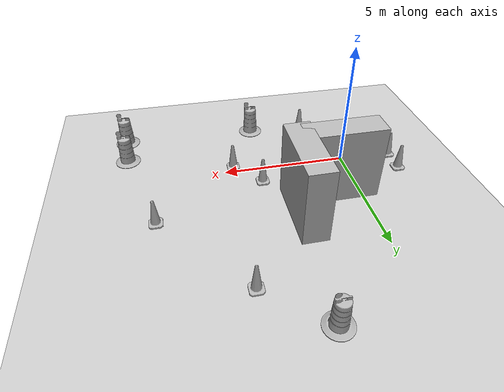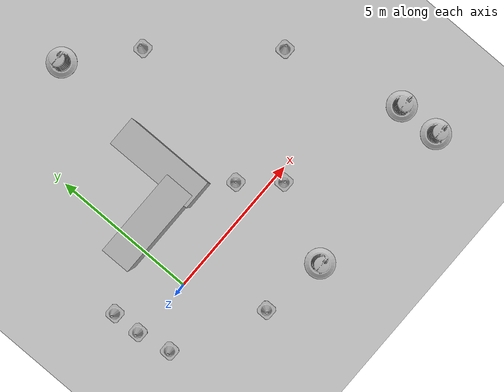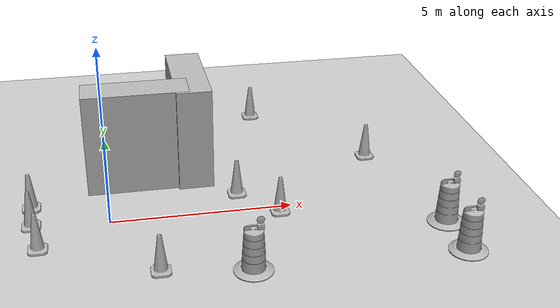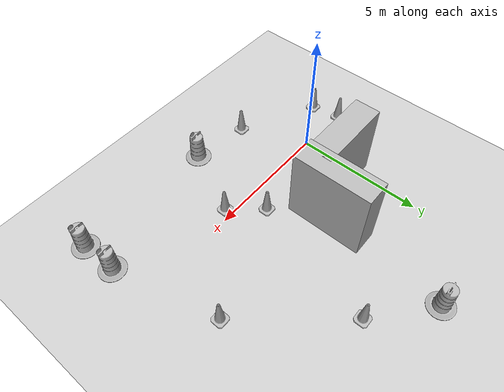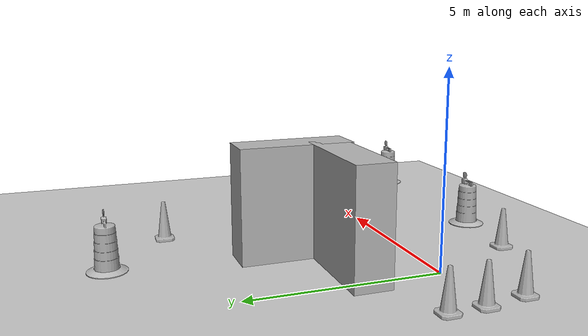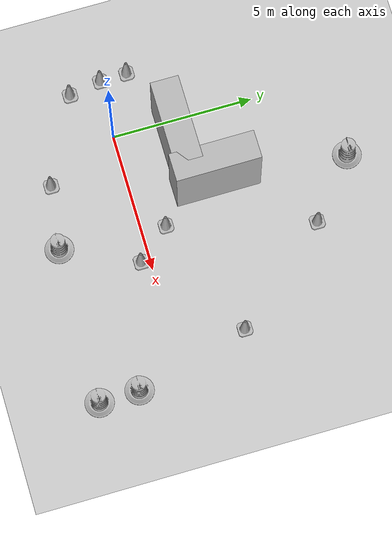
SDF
<sdf version="1.7">
 <world name="default">
  <light name="sun" type="directional">
   <pose>0 0 10 0 -0 0</pose>
   <diffuse>0.8 0.8 0.8 1</diffuse>
   <specular>0.2 0.2 0.2 1</specular>
   <attenuation>
    <range>1000</range>
    <constant>0.9</constant>
    <linear>0.01</linear>
    <quadratic>0.001</quadratic>
   </attenuation>
   <direction>-0.5 0.1 -0.9</direction>
   <spot><inner_angle>0</inner_angle><outer_angle>0</outer_angle><falloff>0</falloff></spot>
  </light>
  <model name="ground_plane">
   <static>1</static>
   <link name="link">
    <collision name="collision">
     <geometry><plane><normal>0 0 1</normal><size>100 100</size></plane></geometry>
     <surface>
      <contact><collide_bitmask>65535</collide_bitmask></contact>
      <friction><ode><mu>100</mu><mu2>50</mu2></ode></friction>
     </surface>
    </collision>
    <visual name="visual">
     <cast_shadows>0</cast_shadows>
     <geometry><plane><normal>0 0 1</normal><size>100 100</size></plane></geometry>
     <material>
      <script><uri>file://media/materials/scripts/gazebo.material</uri><name>Gazebo/Grey</name></script>
     </material>
    </visual>
   </link>
  </model>
  <gravity>0 0 -9.8</gravity>
  <magnetic_field>6e-06 2.3e-05 -4.2e-05</magnetic_field>
  <atmosphere type="adiabatic"/>
  <physics type="ode">
   <max_step_size>0.001</max_step_size>
   <real_time_factor>1</real_time_factor>
   <real_time_update_rate>1000</real_time_update_rate>
  </physics>
  <scene><ambient>0.4 0.4 0.4 1</ambient><background>0.7 0.7 0.7 1</background><shadows>1</shadows></scene>
  <spherical_coordinates>
   <surface_model>EARTH_WGS84</surface_model>
   <latitude_deg>0</latitude_deg>
   <longitude_deg>0</longitude_deg>
   <elevation>0</elevation>
   <heading_deg>0</heading_deg>
  </spherical_coordinates>
  <model name="Construction Cone">
   <link name="link">
    <collision name="collision">
     <geometry>
      <mesh><scale>10 10 10</scale><uri>model://construction_cone/meshes/construction_cone.dae</uri></mesh>
     </geometry>
    </collision>
    <visual name="visual">
     <geometry>
      <mesh><scale>10 10 10</scale><uri>model://construction_cone/meshes/construction_cone.dae</uri></mesh>
     </geometry>
    </visual>
    <inertial>
     <inertia><ixx>1</ixx><ixy>0</ixy><ixz>0</ixz><iyy>1</iyy><iyz>0</iyz><izz>1</izz></inertia>
     <mass>1</mass>
    </inertial>
   </link>
   <pose>-2.09858 0.117097 -0 0 -0 0</pose>
  </model>
  <model name="Construction Cone_0">
   <link name="link">
    <collision name="collision">
     <geometry>
      <mesh><scale>10 10 10</scale><uri>model://construction_cone/meshes/construction_cone.dae</uri></mesh>
     </geometry>
    </collision>
    <visual name="visual">
     <geometry>
      <mesh><scale>10 10 10</scale><uri>model://construction_cone/meshes/construction_cone.dae</uri></mesh>
     </geometry>
    </visual>
    <inertial>
     <inertia><ixx>1</ixx><ixy>0</ixy><ixz>0</ixz><iyy>1</iyy><iyz>0</iyz><izz>1</izz></inertia>
     <mass>1</mass>
    </inertial>
   </link>
   <pose>-2.1224 1.0783 -0 0 -1e-06 0</pose>
  </model>
  <model name="Construction Cone_1">
   <link name="link">
    <collision name="collision">
     <geometry>
      <mesh><scale>10 10 10</scale><uri>model://construction_cone/meshes/construction_cone.dae</uri></mesh>
     </geometry>
    </collision>
    <visual name="visual">
     <geometry>
      <mesh><scale>10 10 10</scale><uri>model://construction_cone/meshes/construction_cone.dae</uri></mesh>
     </geometry>
    </visual>
    <inertial>
     <inertia><ixx>1</ixx><ixy>0</ixy><ixz>0</ixz><iyy>1</iyy><iyz>0</iyz><izz>1</izz></inertia>
     <mass>1</mass>
    </inertial>
   </link>
   <pose>-1.89276 -1.04271 -0 0 -0 0</pose>
  </model>
  <model name="brick_box_3x1x3">
   <static>1</static>
   <link name="chassis">
    <pose>0 0 1.5 0 -0 0</pose>
    <collision name="collision"><geometry><box><size>3 1 3</size></box></geometry></collision>
    <visual name="visual">
     <geometry><mesh><uri>model://brick_box_3x1x3/meshes/simple_box.dae</uri><scale>3 1 3</scale></mesh></geometry>
     <material>
      <script>
       <uri>model://brick_box_3x1x3/materials/scripts</uri>
       <uri>model://brick_box_3x1x3/materials/textures</uri>
       <name>BrickBox/Diffuse</name>
      </script>
     </material>
    </visual>
   </link>
   <pose>0.944072 2.04378 0 0 -0 0</pose>
  </model>
  <model name="brick_box_3x1x3_0">
   <static>1</static>
   <link name="chassis">
    <pose>0 0 1.5 0 -0 0</pose>
    <collision name="collision"><geometry><box><size>3 1 3</size></box></geometry></collision>
    <visual name="visual">
     <geometry><mesh><uri>model://brick_box_3x1x3/meshes/simple_box.dae</uri><scale>3 1 3</scale></mesh></geometry>
     <material>
      <script>
       <uri>model://brick_box_3x1x3/materials/scripts</uri>
       <uri>model://brick_box_3x1x3/materials/textures</uri>
       <name>BrickBox/Diffuse</name>
      </script>
     </material>
    </visual>
   </link>
   <pose>2.54318 2.94513 0 0 0 -1.56682</pose>
  </model>
  <model name="Construction Cone_2">
   <link name="link">
    <collision name="collision">
     <geometry>
      <mesh><scale>10 10 10</scale><uri>model://construction_cone/meshes/construction_cone.dae</uri></mesh>
     </geometry>
    </collision>
    <visual name="visual">
     <geometry>
      <mesh><scale>10 10 10</scale><uri>model://construction_cone/meshes/construction_cone.dae</uri></mesh>
     </geometry>
    </visual>
    <inertial>
     <inertia><ixx>1</ixx><ixy>0</ixy><ixz>0</ixz><iyy>1</iyy><iyz>0</iyz><izz>1</izz></inertia>
     <mass>1</mass>
    </inertial>
   </link>
   <pose>3.61853 0.864531 0 -0 -0 -0</pose>
  </model>
  <model name="Construction Cone_3">
   <link name="link">
    <collision name="collision">
     <geometry>
      <mesh><scale>10 10 10</scale><uri>model://construction_cone/meshes/construction_cone.dae</uri></mesh>
     </geometry>
    </collision>
    <visual name="visual">
     <geometry>
      <mesh><scale>10 10 10</scale><uri>model://construction_cone/meshes/construction_cone.dae</uri></mesh>
     </geometry>
    </visual>
    <inertial>
     <inertia><ixx>1</ixx><ixy>0</ixy><ixz>0</ixz><iyy>1</iyy><iyz>0</iyz><izz>1</izz></inertia>
     <mass>1</mass>
    </inertial>
   </link>
   <pose>4.94402 5.93128 -6e-06 2e-06 -0 0</pose>
  </model>
  <model name="Construction Barrel">
   <link name="link">
    <inertial>
     <pose>0 0 0.4 0 -0 0</pose>
     <mass>500</mass>
     <inertia><ixx>51.2096</ixx><iyy>51.2096</iyy><izz>25</izz><ixy>0</ixy><ixz>0</ixz><iyz>0</iyz></inertia>
    </inertial>
    <collision name="collision">
     <geometry><mesh><uri>model://construction_barrel/meshes/construction_barrel.dae</uri></mesh></geometry>
    </collision>
    <visual name="visual">
     <geometry><mesh><uri>model://construction_barrel/meshes/construction_barrel.dae</uri></mesh></geometry>
    </visual>
   </link>
   <pose>2.90362 7.6322 -0 1e-06 -1e-06 -1.2e-05</pose>
  </model>
  <model name="Construction Barrel_0">
   <link name="link">
    <inertial>
     <pose>0 0 0.4 0 -0 0</pose>
     <mass>500</mass>
     <inertia><ixx>51.2096</ixx><iyy>51.2096</iyy><izz>25</izz><ixy>0</ixy><ixz>0</ixz><iyz>0</iyz></inertia>
    </inertial>
    <collision name="collision">
     <geometry><mesh><uri>model://construction_barrel/meshes/construction_barrel.dae</uri></mesh></geometry>
    </collision>
    <visual name="visual">
     <geometry><mesh><uri>model://construction_barrel/meshes/construction_barrel.dae</uri></mesh></geometry>
    </visual>
   </link>
   <pose>8.94394 -1.60424 -1e-06 0 5e-06 -1e-05</pose>
  </model>
  <model name="Construction Barrel_1">
   <link name="link">
    <inertial>
     <pose>0 0 0.4 0 -0 0</pose>
     <mass>500</mass>
     <inertia><ixx>51.2096</ixx><iyy>51.2096</iyy><izz>25</izz><ixy>0</ixy><ixz>0</ixz><iyz>0</iyz></inertia>
    </inertial>
    <collision name="collision">
     <geometry><mesh><uri>model://construction_barrel/meshes/construction_barrel.dae</uri></mesh></geometry>
    </collision>
    <visual name="visual">
     <geometry><mesh><uri>model://construction_barrel/meshes/construction_barrel.dae</uri></mesh></geometry>
    </visual>
   </link>
   <pose>8.97845 -3.02466 -2e-06 -0 7e-06 -8e-06</pose>
  </model>
  <model name="Construction Cone_4">
   <link name="link">
    <collision name="collision">
     <geometry>
      <mesh><scale>10 10 10</scale><uri>model://construction_cone/meshes/construction_cone.dae</uri></mesh>
     </geometry>
    </collision>
    <visual name="visual">
     <geometry>
      <mesh><scale>10 10 10</scale><uri>model://construction_cone/meshes/construction_cone.dae</uri></mesh>
     </geometry>
    </visual>
    <inertial>
     <inertia><ixx>1</ixx><ixy>0</ixy><ixz>0</ixz><iyy>1</iyy><iyz>0</iyz><izz>1</izz></inertia>
     <mass>1</mass>
    </inertial>
   </link>
   <pose>7.89695 2.44098 -0 0 -1e-06 0</pose>
  </model>
  <model name="Construction Barrel_2">
   <link name="link">
    <inertial>
     <pose>0 0 0.4 0 -0 0</pose>
     <mass>500</mass>
     <inertia><ixx>51.2096</ixx><iyy>51.2096</iyy><izz>25</izz><ixy>0</ixy><ixz>0</ixz><iyz>0</iyz></inertia>
    </inertial>
    <collision name="collision">
     <geometry><mesh><uri>model://construction_barrel/meshes/construction_barrel.dae</uri></mesh></geometry>
    </collision>
    <visual name="visual">
     <geometry><mesh><uri>model://construction_barrel/meshes/construction_barrel.dae</uri></mesh></geometry>
    </visual>
   </link>
   <pose>3.39114 -2.89621 1e-06 2e-06 3e-06 -6e-06</pose>
  </model>
  <model name="Construction Cone_5">
   <link name="link">
    <collision name="collision">
     <geometry>
      <mesh><scale>10 10 10</scale><uri>model://construction_cone/meshes/construction_cone.dae</uri></mesh>
     </geometry>
    </collision>
    <visual name="visual">
     <geometry>
      <mesh><scale>10 10 10</scale><uri>model://construction_cone/meshes/construction_cone.dae</uri></mesh>
     </geometry>
    </visual>
    <inertial>
     <inertia><ixx>1</ixx><ixy>0</ixy><ixz>0</ixz><iyy>1</iyy><iyz>0</iyz><izz>1</izz></inertia>
     <mass>1</mass>
    </inertial>
   </link>
   <pose>1.13046 -2.55883 -0 0 -0 0</pose>
  </model>
  <model name="Construction Cone_6">
   <link name="link">
    <collision name="collision">
     <geometry>
      <mesh><scale>10 10 10</scale><uri>model://construction_cone/meshes/construction_cone.dae</uri></mesh>
     </geometry>
    </collision>
    <visual name="visual">
     <geometry>
      <mesh><scale>10 10 10</scale><uri>model://construction_cone/meshes/construction_cone.dae</uri></mesh>
     </geometry>
    </visual>
    <inertial>
     <inertia><ixx>1</ixx><ixy>0</ixy><ixz>0</ixz><iyy>1</iyy><iyz>0</iyz><izz>1</izz></inertia>
     <mass>1</mass>
    </inertial>
   </link>
   <pose>4.62487 -0.31151 -0 0 -1e-06 0</pose>
  </model>
 </world>
</sdf>
